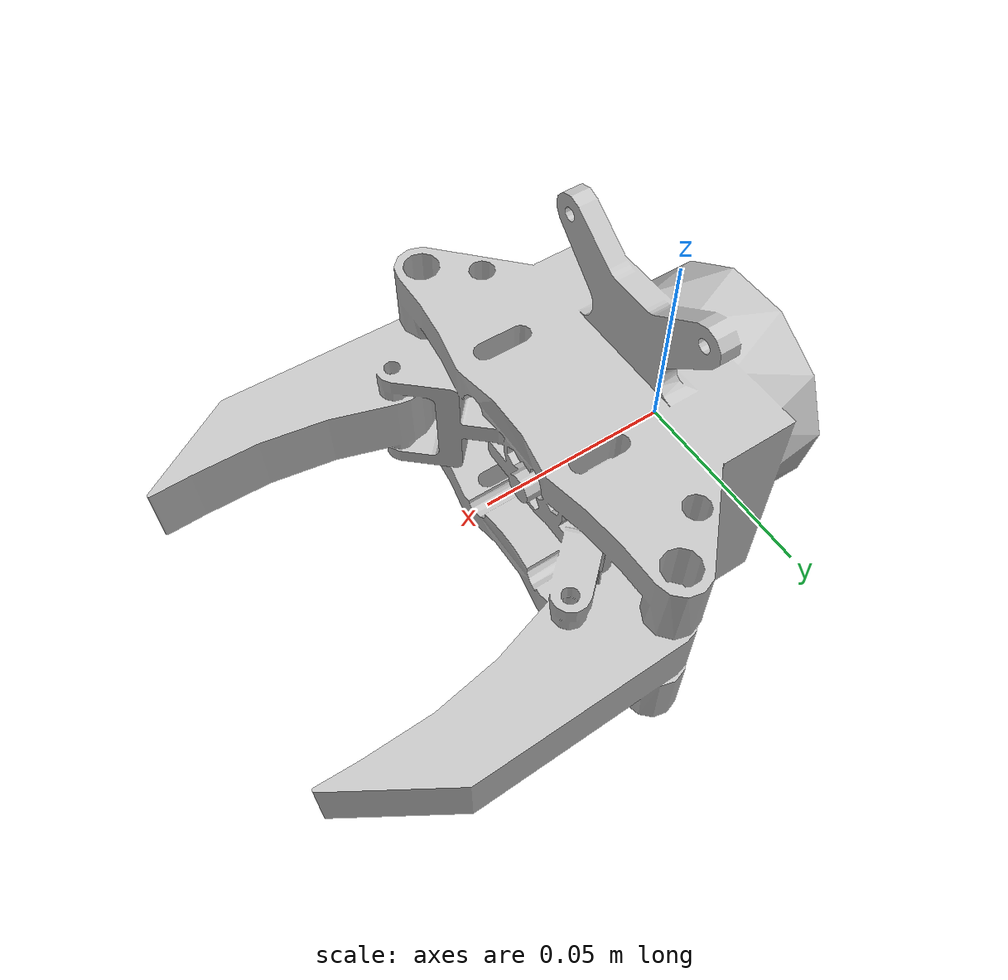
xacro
<?xml version="1.0"?>
<robot xmlns:xacro="http://www.ros.org/wiki/xacro">

  <!-- Mount frame connected from Link7 by my_robot.urdf.xacro. -->
  <link name="gripper_base_link"/>

  <!-- V1.1 integrated end effector body. -->
  <link name="end_effector_link">
    <inertial>
      <origin xyz="0.065 0 0.01" rpy="0 0 0"/>
      <mass value="0.22"/>
      <inertia ixx="0.00022" ixy="0" ixz="0"
               iyy="0.00038" iyz="0" izz="0.00038"/>
    </inertial>
    <visual>
      <origin xyz="-0.58437982 0 -0.13738168" rpy="1.5707963 0 0"/>
      <geometry>
        <mesh filename="package://gripper_description/meshes/v1_1/part_355_part.stl" scale="0.001 0.001 0.001"/>
      </geometry>
      <material name="v1_1_default">
        <color rgba="0.75 0.75 0.75 1.0"/>
      </material>
    </visual>
    <collision>
      <origin xyz="0.04 0 0" rpy="0 0 0"/>
      <geometry>
        <box size="0.08 0.07 0.05"/>
      </geometry>
    </collision>
  </link>

  <joint name="joint_gripper" type="fixed">
    <origin xyz="0 0 0" rpy="0 0 0"/>
    <parent link="gripper_base_link"/>
    <child link="end_effector_link"/>
  </joint>

  <link name="right_finger_Link">
    <inertial>
      <origin xyz="0 0 0" rpy="0 0 0"/>
      <mass value="0.05"/>
      <inertia ixx="0.00002" ixy="0" ixz="0"
               iyy="0.00005" iyz="0" izz="0.00005"/>
    </inertial>
    <collision>
      <origin xyz="0 0 0" rpy="0 0 0"/>
      <geometry>
        <box size="0.1 0.018 0.035"/>
      </geometry>
    </collision>
  </link>

  <joint name="joint_right_finger" type="prismatic">
    <origin xyz="0.07 0.045 0" rpy="0 0 0"/>
    <parent link="end_effector_link"/>
    <child link="right_finger_Link"/>
    <axis xyz="0 1 0"/>
    <limit lower="-0.04" upper="0" effort="2" velocity="2"/>
  </joint>

  <link name="left_finger_Link">
    <inertial>
      <origin xyz="0 0 0" rpy="0 0 0"/>
      <mass value="0.05"/>
      <inertia ixx="0.00002" ixy="0" ixz="0"
               iyy="0.00005" iyz="0" izz="0.00005"/>
    </inertial>
    <collision>
      <origin xyz="0 0 0" rpy="0 0 0"/>
      <geometry>
        <box size="0.1 0.018 0.035"/>
      </geometry>
    </collision>
  </link>

  <joint name="joint_left_finger" type="prismatic">
    <origin xyz="0.07 -0.045 0" rpy="0 0 0"/>
    <parent link="end_effector_link"/>
    <child link="left_finger_Link"/>
    <axis xyz="0 1 0"/>
    <mimic joint="joint_right_finger" multiplier="-1.0" offset="0"/>
    <limit lower="0" upper="0.04" effort="2" velocity="2"/>
  </joint>

  <link name="link_ee"/>
  <joint name="joint_ee" type="fixed">
    <origin xyz="0.08 0 0" rpy="0 0 0"/>
    <parent link="end_effector_link"/>
    <child link="link_ee"/>
  </joint>

  <link name="tool_link"/>
  <joint name="joint_tool" type="fixed">
    <origin xyz="0.08 0 0" rpy="0 0 0"/>
    <parent link="end_effector_link"/>
    <child link="tool_link"/>
  </joint>

  <link name="gripper_center"/>
  <joint name="joint_gripper_center" type="fixed">
    <origin xyz="0.08 0 0" rpy="0 0 0"/>
    <parent link="end_effector_link"/>
    <child link="gripper_center"/>
  </joint>

</robot>
